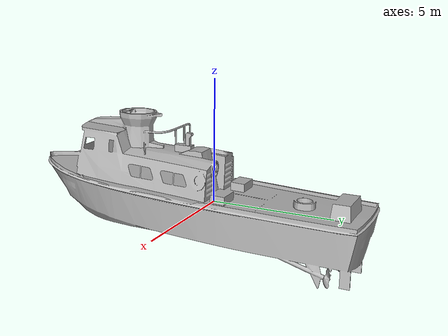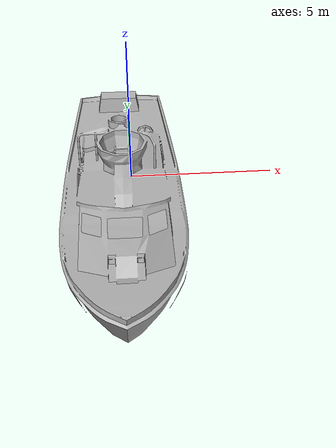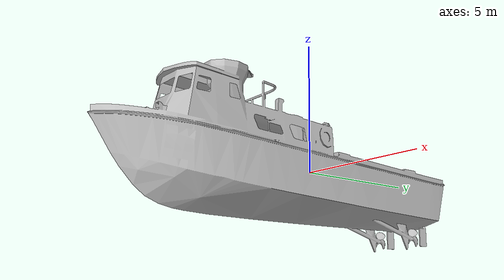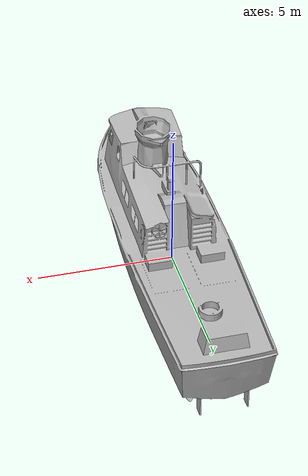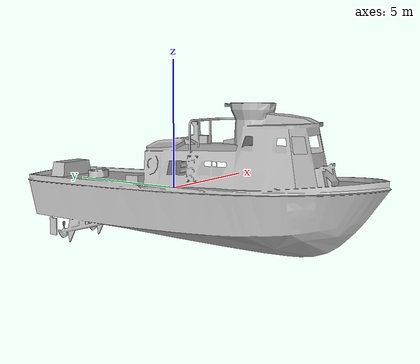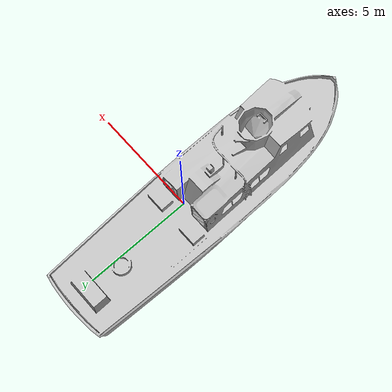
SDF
<?xml version="1.0"?>
<sdf version="1.4">
    <model name="steamboat">
        <pose>0 0 0 0 0 0</pose>
        <static>true</static>
        <link name="steamboat_body">
            <visual name="visual">
                <geometry>
                    <mesh>
                        <uri>model://shipwreck_steamboat/visual.osgb</uri>
                    </mesh>
                </geometry>
            </visual>
            <collision name="collision">
                <geometry>
                    <mesh>
                        <uri>model://shipwreck_steamboat/collision.stl</uri>
                    </mesh>
                </geometry>
            </collision>
            <inertial>
                <pose>0 0 -1 0 0 0</pose>
                <inertia>
                    <ixx>0.0</ixx>
                    <ixy>0</ixy>
                    <ixz>0.0</ixz>
                    <iyy>0.0</iyy>
                    <iyz>0</iyz>
                    <izz>0.0</izz>
                </inertia>
                <mass>1.0</mass>
            </inertial>
        </link>
    </model>
</sdf>
